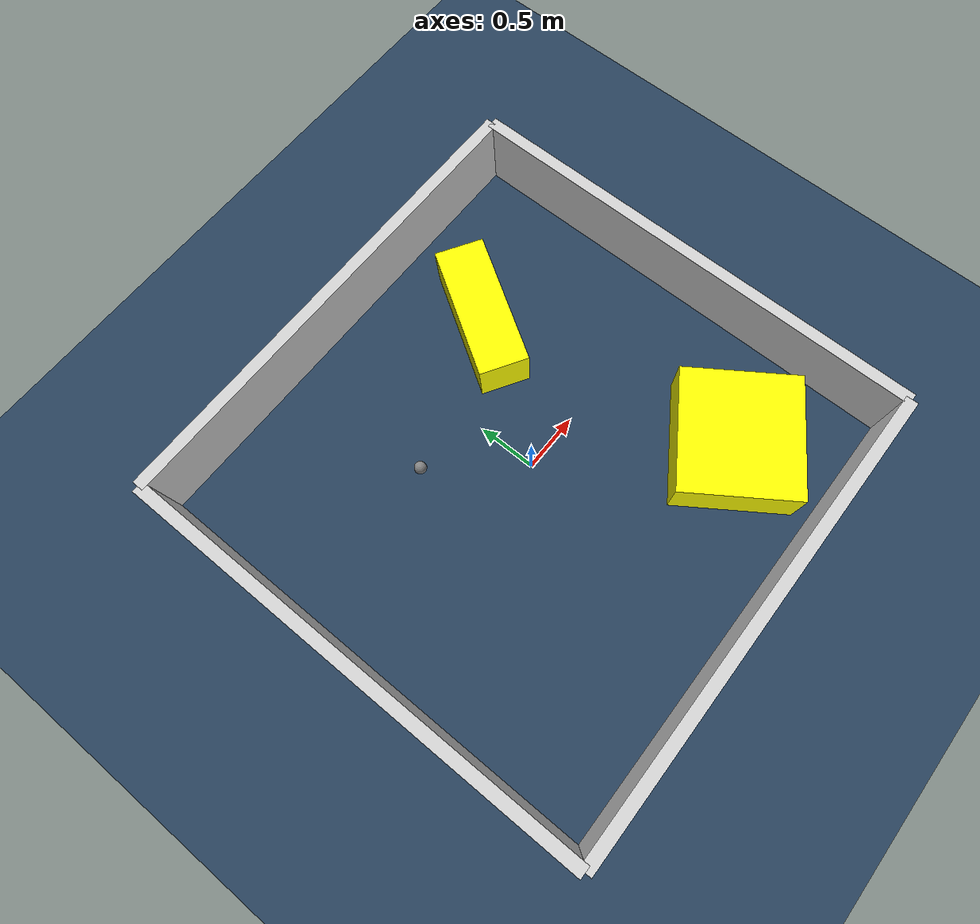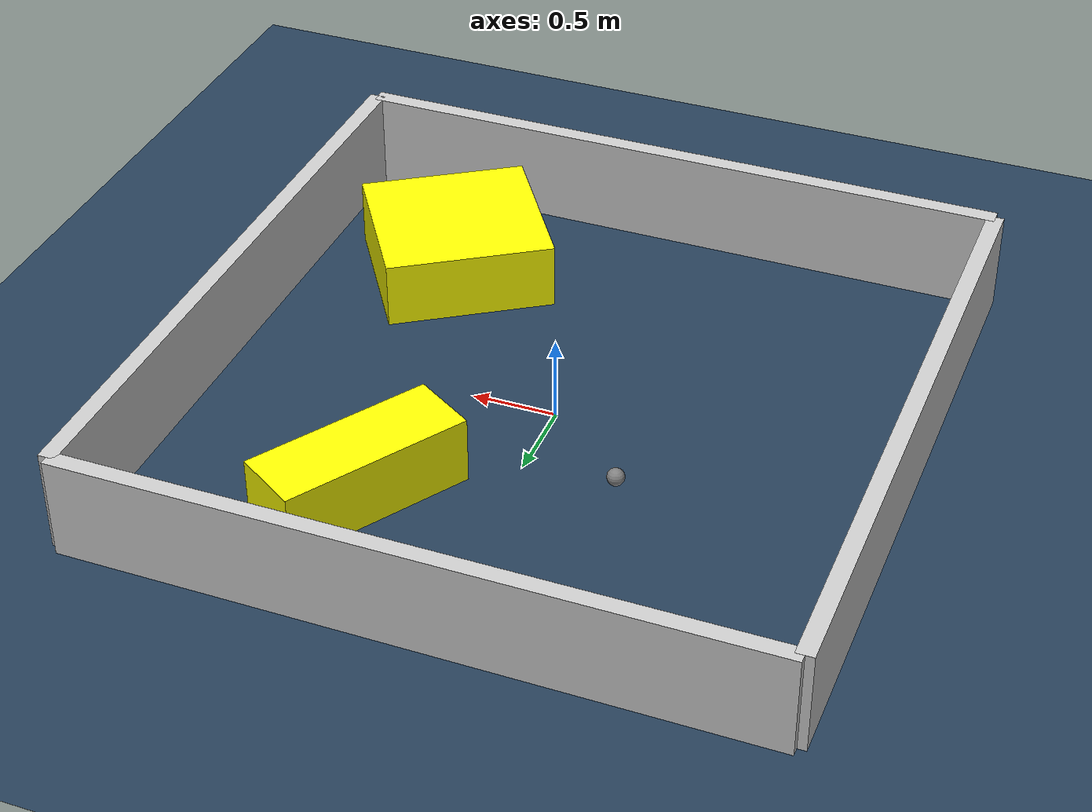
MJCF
<?xml version="1.0" ?>
<mujoco model="generated_environment">
  <option timestep="0.01" integrator="RK4" cone="elliptic"/>
  <default>
    <geom density="1"/>
  </default>
  <asset>
    <texture builtin="gradient" height="3072" rgb1="0.3 0.5 0.7" rgb2="0 0 0" type="skybox" width="512"/>
    <texture builtin="checker" height="300" mark="edge" markrgb="0.8 0.8 0.8" name="groundplane" rgb1="0.2 0.3 0.4" rgb2="0.1 0.2 0.3" type="2d" width="300"/>
    <material name="groundplane" reflectance="0.2" texrepeat="5 5" texture="groundplane" texuniform="true"/>
    <material name="robot" rgba="0.0 1.0 0.0 1"/>
  </asset>
  <worldbody>
    <light dir="0 0 -1" directional="true" pos="0 0 1.5"/>
    <geom condim="4" friction="1.0 0.005 0.001" material="groundplane" name="floor" size="0 0 0.05" type="plane"/>
    <body name="walls">
      <geom name="wall_1" condim="4" pos="-2.0 0.0 0.3" rgba="0.800000011920929 0.800000011920929 0.800000011920929 1.0" size="0.05 2.0 0.3" type="box"/>
      <geom name="wall_2" condim="4" pos="2.0 0.0 0.3" rgba="0.800000011920929 0.800000011920929 0.800000011920929 1.0" size="0.05 2.0 0.3" type="box"/>
      <geom name="wall_3" condim="4" pos="0.0 -2.0 0.3" rgba="0.800000011920929 0.800000011920929 0.800000011920929 1.0" size="2.0 0.05 0.3" type="box"/>
      <geom name="wall_4" condim="4" pos="0.0 2.0 0.3" rgba="0.800000011920929 0.800000011920929 0.800000011920929 1.0" size="2.0 0.05 0.3" type="box"/>
    </body>
    <body name="robot">
      <joint name="joint_x" type="slide" pos="0 0 0" axis="1 0 0"/>
      <joint name="joint_y" type="slide" pos="0 0 0" axis="0 1 0"/>
      <geom name="robot" type="sphere" pos="-0.5860604330205279 0.6282715303578912 0.2" size="0.05" mass="5." friction="1.0 0.005 0.0001" condim="4"/>
      <site name="sensor_ball"/>
    </body>
    <body name="obstacle_1_movable">
      <geom name="obstacle_1_movable" condim="4" pos="1.097391045064179 -1.1525877543010785 0.2" euler="0 0 303.5584256151274" friction="1.0 0.005 0.001" rgba="1 1 0 1" size="0.4842450323178382 0.5055590996562089 0.2" type="box" mass="0.1"/>
      <joint type="free"/>
    </body>
    <body name="obstacle_2_movable">
      <geom name="obstacle_2_movable" condim="4" pos="0.7086504196838455 1.0748149308691102 0.2" euler="0 0 58.15462704759773" friction="1.0 0.005 0.001" rgba="1 1 0 1" size="0.5656423372757513 0.2054296490835928 0.2" type="box" mass="0.1"/>
      <joint type="free"/>
    </body>
  </worldbody>
  <actuator>
    <motor name="actuator_x" joint="joint_x" gear="1" ctrlrange="-1 1"/>
    <motor name="actuator_y" joint="joint_y" gear="1" ctrlrange="-1 1"/>
  </actuator>
</mujoco>
